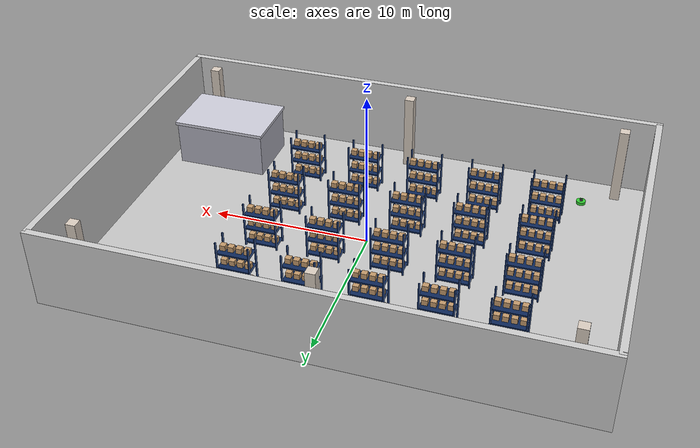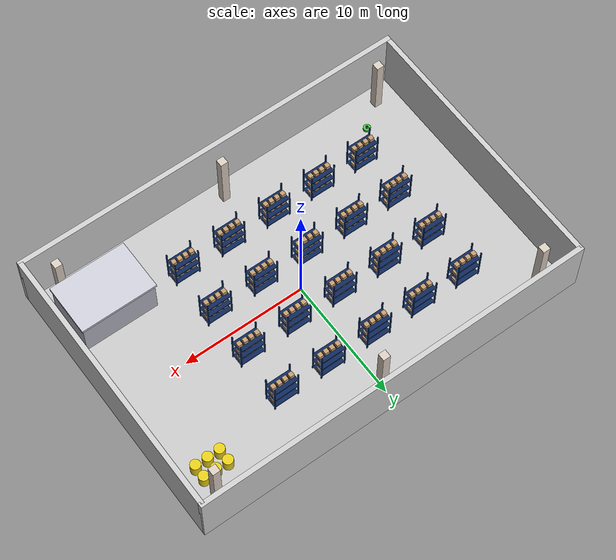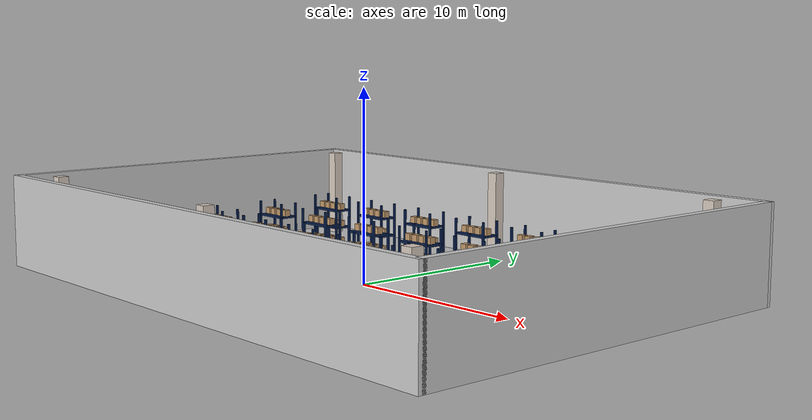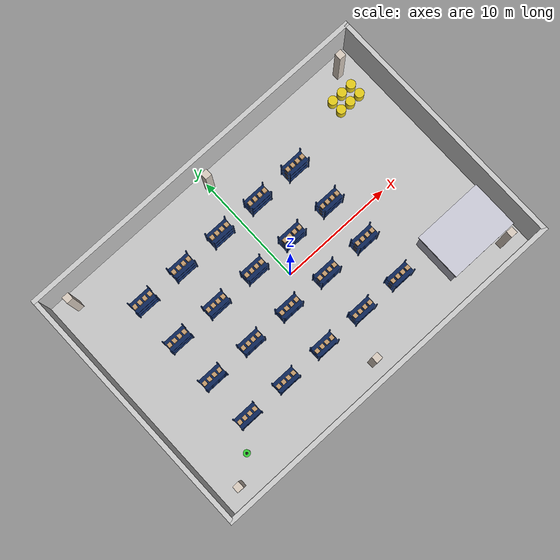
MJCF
<mujoco model="warehouse">
  <option gravity="0 0 -9.81" timestep="0.005"/>
  <compiler angle="degree"/>

  <asset>
    <texture type="skybox" builtin="gradient" rgb1="0.4 0.6 0.8" rgb2="0 0 0" width="512" height="512"/>
    <texture name="grid" type="2d" builtin="checker" width="512" height="512" rgb1="0.8 0.8 0.8" rgb2="0.75 0.75 0.75"/>
    <material name="floor_mat" texture="grid" texrepeat="20 20" texuniform="true" reflectance="0.05"/>

    <material name="mat_blue_rack" rgba="0.05 0.15 0.35 1" reflectance="0.2"/>
    <material name="mat_box_brown" rgba="0.76 0.6 0.42 1" reflectance="0.0"/>
    <material name="mat_pillar" rgba="0.85 0.8 0.75 1" reflectance="0.0"/>
    <material name="mat_wall" rgba="0.8 0.8 0.8 1" reflectance="0.0"/>
    <material name="mat_barrel" rgba="0.9 0.8 0.1 1" reflectance="0.3"/>
    <material name="mat_office" rgba="0.7 0.7 0.75 1" reflectance="0.1"/>
    <material name="mat_office_roof" rgba="0.8 0.8 0.85 1" reflectance="0.1"/>
  </asset>

  <worldbody>
    <!-- Lighting -->
    <light pos="0 0 15" dir="0 0 -1" directional="true" diffuse="0.9 0.9 0.9" specular="0.1 0.1 0.1" castshadow="true"/>
    <light pos="-10 0 10" dir="1 0 -1" directional="false" diffuse="0.4 0.4 0.4"/>
    <light pos="10 0 10" dir="-1 0 -1" directional="false" diffuse="0.4 0.4 0.4"/>

    <!-- Floor -->
    <geom type="plane" size="16 11 0.05" material="floor_mat"/>

    <!-- Perimeter Walls -->
    <body name="wall_left" pos="-16 0 2.5">
      <geom type="box" size="0.2 11 2.5" material="mat_wall"/>
    </body>
    <body name="wall_right" pos="16 0 2.5">
      <geom type="box" size="0.2 11 2.5" material="mat_wall"/>
    </body>
    <body name="wall_top" pos="0 11 2.5">
      <geom type="box" size="16.2 0.2 2.5" material="mat_wall"/>
    </body>
    <body name="wall_bottom" pos="0 -11 2.5">
      <geom type="box" size="16.2 0.2 2.5" material="mat_wall"/>
    </body>

    <body name="pillar_1" pos="-14 -9.5 2.5">
      <geom type="box" size="0.3 0.3 2.5" material="mat_pillar"/>
    </body>
    <body name="pillar_2" pos="-14 9.5 2.5">
      <geom type="box" size="0.3 0.3 2.5" material="mat_pillar"/>
    </body>
    <body name="pillar_3" pos="0 -9.5 2.5">
      <geom type="box" size="0.3 0.3 2.5" material="mat_pillar"/>
    </body>
    <body name="pillar_4" pos="0 9.5 2.5">
      <geom type="box" size="0.3 0.3 2.5" material="mat_pillar"/>
    </body>
    <body name="pillar_5" pos="14 -9.5 2.5">
      <geom type="box" size="0.3 0.3 2.5" material="mat_pillar"/>
    </body>
    <body name="pillar_6" pos="14 9.5 2.5">
      <geom type="box" size="0.3 0.3 2.5" material="mat_pillar"/>
    </body>

    <!-- Office Block -->
    <body name="office_container" pos="12 -7 1.5">
      <geom type="box" size="3 2 1.5" material="mat_office"/>
      <geom type="box" size="3.1 2.1 0.1" pos="0 0 1.5" material="mat_office_roof"/>
    </body>

    <body name="barrel_1" pos="12 7 0.5">
      <geom type="cylinder" size="0.4 0.5" material="mat_barrel"/>
    </body>
    <body name="barrel_2" pos="12 8 0.5">
      <geom type="cylinder" size="0.4 0.5" material="mat_barrel"/>
    </body>
    <body name="barrel_3" pos="13 7 0.5">
      <geom type="cylinder" size="0.4 0.5" material="mat_barrel"/>
    </body>
    <body name="barrel_4" pos="13 8 0.5">
      <geom type="cylinder" size="0.4 0.5" material="mat_barrel"/>
    </body>
    <body name="barrel_5" pos="14 7 0.5">
      <geom type="cylinder" size="0.4 0.5" material="mat_barrel"/>
    </body>
    <body name="barrel_6" pos="14 8 0.5">
      <geom type="cylinder" size="0.4 0.5" material="mat_barrel"/>
    </body>

    <!-- Rack 1 -->
    <body name="rack_1" pos="-10 -6 0">
      <geom type="box" size="0.05 0.05 1.5" pos="-1.0 -0.5 1.5" material="mat_blue_rack"/>
<geom type="box" size="0.05 0.05 1.5" pos="-1.0 0.5 1.5" material="mat_blue_rack"/>
<geom type="box" size="0.05 0.05 1.5" pos="1.0 -0.5 1.5" material="mat_blue_rack"/>
<geom type="box" size="0.05 0.05 1.5" pos="1.0 0.5 1.5" material="mat_blue_rack"/>

      <geom type="box" size="1.0 0.5 0.05" pos="0 0 0.2" material="mat_blue_rack"/>
<geom type="box" size="0.175 0.175 0.175" pos="-0.75 0 0.425" material="mat_box_brown"/>
<geom type="box" size="0.175 0.175 0.175" pos="-0.25 0 0.425" material="mat_box_brown"/>
<geom type="box" size="0.175 0.175 0.175" pos="0.25 0 0.425" material="mat_box_brown"/>
<geom type="box" size="0.175 0.175 0.175" pos="0.75 0 0.425" material="mat_box_brown"/>
<geom type="box" size="1.0 0.5 0.05" pos="0 0 1.2" material="mat_blue_rack"/>
<geom type="box" size="0.175 0.175 0.175" pos="-0.75 0 1.425" material="mat_box_brown"/>
<geom type="box" size="0.175 0.175 0.175" pos="-0.25 0 1.425" material="mat_box_brown"/>
<geom type="box" size="0.175 0.175 0.175" pos="0.25 0 1.425" material="mat_box_brown"/>
<geom type="box" size="0.175 0.175 0.175" pos="0.75 0 1.425" material="mat_box_brown"/>
<geom type="box" size="1.0 0.5 0.05" pos="0 0 2.2" material="mat_blue_rack"/>
<geom type="box" size="0.175 0.175 0.175" pos="-0.75 0 2.425" material="mat_box_brown"/>
<geom type="box" size="0.175 0.175 0.175" pos="-0.25 0 2.425" material="mat_box_brown"/>
<geom type="box" size="0.175 0.175 0.175" pos="0.25 0 2.425" material="mat_box_brown"/>
<geom type="box" size="0.175 0.175 0.175" pos="0.75 0 2.425" material="mat_box_brown"/>

    </body>
    <!-- Rack 2 -->
    <body name="rack_2" pos="-6 -6 0">
      <geom type="box" size="0.05 0.05 1.5" pos="-1.0 -0.5 1.5" material="mat_blue_rack"/>
<geom type="box" size="0.05 0.05 1.5" pos="-1.0 0.5 1.5" material="mat_blue_rack"/>
<geom type="box" size="0.05 0.05 1.5" pos="1.0 -0.5 1.5" material="mat_blue_rack"/>
<geom type="box" size="0.05 0.05 1.5" pos="1.0 0.5 1.5" material="mat_blue_rack"/>

      <geom type="box" size="1.0 0.5 0.05" pos="0 0 0.2" material="mat_blue_rack"/>
<geom type="box" size="0.175 0.175 0.175" pos="-0.75 0 0.425" material="mat_box_brown"/>
<geom type="box" size="0.175 0.175 0.175" pos="-0.25 0 0.425" material="mat_box_brown"/>
<geom type="box" size="0.175 0.175 0.175" pos="0.25 0 0.425" material="mat_box_brown"/>
<geom type="box" size="0.175 0.175 0.175" pos="0.75 0 0.425" material="mat_box_brown"/>
<geom type="box" size="1.0 0.5 0.05" pos="0 0 1.2" material="mat_blue_rack"/>
<geom type="box" size="0.175 0.175 0.175" pos="-0.75 0 1.425" material="mat_box_brown"/>
<geom type="box" size="0.175 0.175 0.175" pos="-0.25 0 1.425" material="mat_box_brown"/>
<geom type="box" size="0.175 0.175 0.175" pos="0.25 0 1.425" material="mat_box_brown"/>
<geom type="box" size="0.175 0.175 0.175" pos="0.75 0 1.425" material="mat_box_brown"/>
<geom type="box" size="1.0 0.5 0.05" pos="0 0 2.2" material="mat_blue_rack"/>
<geom type="box" size="0.175 0.175 0.175" pos="-0.75 0 2.425" material="mat_box_brown"/>
<geom type="box" size="0.175 0.175 0.175" pos="-0.25 0 2.425" material="mat_box_brown"/>
<geom type="box" size="0.175 0.175 0.175" pos="0.25 0 2.425" material="mat_box_brown"/>
<geom type="box" size="0.175 0.175 0.175" pos="0.75 0 2.425" material="mat_box_brown"/>

    </body>
    <!-- Rack 3 -->
    <body name="rack_3" pos="-2 -6 0">
      <geom type="box" size="0.05 0.05 1.5" pos="-1.0 -0.5 1.5" material="mat_blue_rack"/>
<geom type="box" size="0.05 0.05 1.5" pos="-1.0 0.5 1.5" material="mat_blue_rack"/>
<geom type="box" size="0.05 0.05 1.5" pos="1.0 -0.5 1.5" material="mat_blue_rack"/>
<geom type="box" size="0.05 0.05 1.5" pos="1.0 0.5 1.5" material="mat_blue_rack"/>

      <geom type="box" size="1.0 0.5 0.05" pos="0 0 0.2" material="mat_blue_rack"/>
<geom type="box" size="0.175 0.175 0.175" pos="-0.75 0 0.425" material="mat_box_brown"/>
<geom type="box" size="0.175 0.175 0.175" pos="-0.25 0 0.425" material="mat_box_brown"/>
<geom type="box" size="0.175 0.175 0.175" pos="0.25 0 0.425" material="mat_box_brown"/>
<geom type="box" size="0.175 0.175 0.175" pos="0.75 0 0.425" material="mat_box_brown"/>
<geom type="box" size="1.0 0.5 0.05" pos="0 0 1.2" material="mat_blue_rack"/>
<geom type="box" size="0.175 0.175 0.175" pos="-0.75 0 1.425" material="mat_box_brown"/>
<geom type="box" size="0.175 0.175 0.175" pos="-0.25 0 1.425" material="mat_box_brown"/>
<geom type="box" size="0.175 0.175 0.175" pos="0.25 0 1.425" material="mat_box_brown"/>
<geom type="box" size="0.175 0.175 0.175" pos="0.75 0 1.425" material="mat_box_brown"/>
<geom type="box" size="1.0 0.5 0.05" pos="0 0 2.2" material="mat_blue_rack"/>
<geom type="box" size="0.175 0.175 0.175" pos="-0.75 0 2.425" material="mat_box_brown"/>
<geom type="box" size="0.175 0.175 0.175" pos="-0.25 0 2.425" material="mat_box_brown"/>
<geom type="box" size="0.175 0.175 0.175" pos="0.25 0 2.425" material="mat_box_brown"/>
<geom type="box" size="0.175 0.175 0.175" pos="0.75 0 2.425" material="mat_box_brown"/>

    </body>
    <!-- Rack 4 -->
    <body name="rack_4" pos="2 -6 0">
      <geom type="box" size="0.05 0.05 1.5" pos="-1.0 -0.5 1.5" material="mat_blue_rack"/>
<geom type="box" size="0.05 0.05 1.5" pos="-1.0 0.5 1.5" material="mat_blue_rack"/>
<geom type="box" size="0.05 0.05 1.5" pos="1.0 -0.5 1.5" material="mat_blue_rack"/>
<geom type="box" size="0.05 0.05 1.5" pos="1.0 0.5 1.5" material="mat_blue_rack"/>

      <geom type="box" size="1.0 0.5 0.05" pos="0 0 0.2" material="mat_blue_rack"/>
<geom type="box" size="0.175 0.175 0.175" pos="-0.75 0 0.425" material="mat_box_brown"/>
<geom type="box" size="0.175 0.175 0.175" pos="-0.25 0 0.425" material="mat_box_brown"/>
<geom type="box" size="0.175 0.175 0.175" pos="0.25 0 0.425" material="mat_box_brown"/>
<geom type="box" size="0.175 0.175 0.175" pos="0.75 0 0.425" material="mat_box_brown"/>
<geom type="box" size="1.0 0.5 0.05" pos="0 0 1.2" material="mat_blue_rack"/>
<geom type="box" size="0.175 0.175 0.175" pos="-0.75 0 1.425" material="mat_box_brown"/>
<geom type="box" size="0.175 0.175 0.175" pos="-0.25 0 1.425" material="mat_box_brown"/>
<geom type="box" size="0.175 0.175 0.175" pos="0.25 0 1.425" material="mat_box_brown"/>
<geom type="box" size="0.175 0.175 0.175" pos="0.75 0 1.425" material="mat_box_brown"/>
<geom type="box" size="1.0 0.5 0.05" pos="0 0 2.2" material="mat_blue_rack"/>
<geom type="box" size="0.175 0.175 0.175" pos="-0.75 0 2.425" material="mat_box_brown"/>
<geom type="box" size="0.175 0.175 0.175" pos="-0.25 0 2.425" material="mat_box_brown"/>
<geom type="box" size="0.175 0.175 0.175" pos="0.25 0 2.425" material="mat_box_brown"/>
<geom type="box" size="0.175 0.175 0.175" pos="0.75 0 2.425" material="mat_box_brown"/>

    </body>
    <!-- Rack 5 -->
    <body name="rack_5" pos="6 -6 0">
      <geom type="box" size="0.05 0.05 1.5" pos="-1.0 -0.5 1.5" material="mat_blue_rack"/>
<geom type="box" size="0.05 0.05 1.5" pos="-1.0 0.5 1.5" material="mat_blue_rack"/>
<geom type="box" size="0.05 0.05 1.5" pos="1.0 -0.5 1.5" material="mat_blue_rack"/>
<geom type="box" size="0.05 0.05 1.5" pos="1.0 0.5 1.5" material="mat_blue_rack"/>

      <geom type="box" size="1.0 0.5 0.05" pos="0 0 0.2" material="mat_blue_rack"/>
<geom type="box" size="0.175 0.175 0.175" pos="-0.75 0 0.425" material="mat_box_brown"/>
<geom type="box" size="0.175 0.175 0.175" pos="-0.25 0 0.425" material="mat_box_brown"/>
<geom type="box" size="0.175 0.175 0.175" pos="0.25 0 0.425" material="mat_box_brown"/>
<geom type="box" size="0.175 0.175 0.175" pos="0.75 0 0.425" material="mat_box_brown"/>
<geom type="box" size="1.0 0.5 0.05" pos="0 0 1.2" material="mat_blue_rack"/>
<geom type="box" size="0.175 0.175 0.175" pos="-0.75 0 1.425" material="mat_box_brown"/>
<geom type="box" size="0.175 0.175 0.175" pos="-0.25 0 1.425" material="mat_box_brown"/>
<geom type="box" size="0.175 0.175 0.175" pos="0.25 0 1.425" material="mat_box_brown"/>
<geom type="box" size="0.175 0.175 0.175" pos="0.75 0 1.425" material="mat_box_brown"/>
<geom type="box" size="1.0 0.5 0.05" pos="0 0 2.2" material="mat_blue_rack"/>
<geom type="box" size="0.175 0.175 0.175" pos="-0.75 0 2.425" material="mat_box_brown"/>
<geom type="box" size="0.175 0.175 0.175" pos="-0.25 0 2.425" material="mat_box_brown"/>
<geom type="box" size="0.175 0.175 0.175" pos="0.25 0 2.425" material="mat_box_brown"/>
<geom type="box" size="0.175 0.175 0.175" pos="0.75 0 2.425" material="mat_box_brown"/>

    </body>
    <!-- Rack 6 -->
    <body name="rack_6" pos="-10 -2 0">
      <geom type="box" size="0.05 0.05 1.5" pos="-1.0 -0.5 1.5" material="mat_blue_rack"/>
<geom type="box" size="0.05 0.05 1.5" pos="-1.0 0.5 1.5" material="mat_blue_rack"/>
<geom type="box" size="0.05 0.05 1.5" pos="1.0 -0.5 1.5" material="mat_blue_rack"/>
<geom type="box" size="0.05 0.05 1.5" pos="1.0 0.5 1.5" material="mat_blue_rack"/>

      <geom type="box" size="1.0 0.5 0.05" pos="0 0 0.2" material="mat_blue_rack"/>
<geom type="box" size="0.175 0.175 0.175" pos="-0.75 0 0.425" material="mat_box_brown"/>
<geom type="box" size="0.175 0.175 0.175" pos="-0.25 0 0.425" material="mat_box_brown"/>
<geom type="box" size="0.175 0.175 0.175" pos="0.25 0 0.425" material="mat_box_brown"/>
<geom type="box" size="0.175 0.175 0.175" pos="0.75 0 0.425" material="mat_box_brown"/>
<geom type="box" size="1.0 0.5 0.05" pos="0 0 1.2" material="mat_blue_rack"/>
<geom type="box" size="0.175 0.175 0.175" pos="-0.75 0 1.425" material="mat_box_brown"/>
<geom type="box" size="0.175 0.175 0.175" pos="-0.25 0 1.425" material="mat_box_brown"/>
<geom type="box" size="0.175 0.175 0.175" pos="0.25 0 1.425" material="mat_box_brown"/>
<geom type="box" size="0.175 0.175 0.175" pos="0.75 0 1.425" material="mat_box_brown"/>
<geom type="box" size="1.0 0.5 0.05" pos="0 0 2.2" material="mat_blue_rack"/>
<geom type="box" size="0.175 0.175 0.175" pos="-0.75 0 2.425" material="mat_box_brown"/>
<geom type="box" size="0.175 0.175 0.175" pos="-0.25 0 2.425" material="mat_box_brown"/>
<geom type="box" size="0.175 0.175 0.175" pos="0.25 0 2.425" material="mat_box_brown"/>
<geom type="box" size="0.175 0.175 0.175" pos="0.75 0 2.425" material="mat_box_brown"/>

    </body>
    <!-- Rack 7 -->
    <body name="rack_7" pos="-6 -2 0">
      <geom type="box" size="0.05 0.05 1.5" pos="-1.0 -0.5 1.5" material="mat_blue_rack"/>
<geom type="box" size="0.05 0.05 1.5" pos="-1.0 0.5 1.5" material="mat_blue_rack"/>
<geom type="box" size="0.05 0.05 1.5" pos="1.0 -0.5 1.5" material="mat_blue_rack"/>
<geom type="box" size="0.05 0.05 1.5" pos="1.0 0.5 1.5" material="mat_blue_rack"/>

      <geom type="box" size="1.0 0.5 0.05" pos="0 0 0.2" material="mat_blue_rack"/>
<geom type="box" size="0.175 0.175 0.175" pos="-0.75 0 0.425" material="mat_box_brown"/>
<geom type="box" size="0.175 0.175 0.175" pos="-0.25 0 0.425" material="mat_box_brown"/>
<geom type="box" size="0.175 0.175 0.175" pos="0.25 0 0.425" material="mat_box_brown"/>
<geom type="box" size="0.175 0.175 0.175" pos="0.75 0 0.425" material="mat_box_brown"/>
<geom type="box" size="1.0 0.5 0.05" pos="0 0 1.2" material="mat_blue_rack"/>
<geom type="box" size="0.175 0.175 0.175" pos="-0.75 0 1.425" material="mat_box_brown"/>
<geom type="box" size="0.175 0.175 0.175" pos="-0.25 0 1.425" material="mat_box_brown"/>
<geom type="box" size="0.175 0.175 0.175" pos="0.25 0 1.425" material="mat_box_brown"/>
<geom type="box" size="0.175 0.175 0.175" pos="0.75 0 1.425" material="mat_box_brown"/>
<geom type="box" size="1.0 0.5 0.05" pos="0 0 2.2" material="mat_blue_rack"/>
<geom type="box" size="0.175 0.175 0.175" pos="-0.75 0 2.425" material="mat_box_brown"/>
<geom type="box" size="0.175 0.175 0.175" pos="-0.25 0 2.425" material="mat_box_brown"/>
<geom type="box" size="0.175 0.175 0.175" pos="0.25 0 2.425" material="mat_box_brown"/>
<geom type="box" size="0.175 0.175 0.175" pos="0.75 0 2.425" material="mat_box_brown"/>

    </body>
    <!-- Rack 8 -->
    <body name="rack_8" pos="-2 -2 0">
      <geom type="box" size="0.05 0.05 1.5" pos="-1.0 -0.5 1.5" material="mat_blue_rack"/>
<geom type="box" size="0.05 0.05 1.5" pos="-1.0 0.5 1.5" material="mat_blue_rack"/>
<geom type="box" size="0.05 0.05 1.5" pos="1.0 -0.5 1.5" material="mat_blue_rack"/>
<geom type="box" size="0.05 0.05 1.5" pos="1.0 0.5 1.5" material="mat_blue_rack"/>

      <geom type="box" size="1.0 0.5 0.05" pos="0 0 0.2" material="mat_blue_rack"/>
<geom type="box" size="0.175 0.175 0.175" pos="-0.75 0 0.425" material="mat_box_brown"/>
<geom type="box" size="0.175 0.175 0.175" pos="-0.25 0 0.425" material="mat_box_brown"/>
<geom type="box" size="0.175 0.175 0.175" pos="0.25 0 0.425" material="mat_box_brown"/>
<geom type="box" size="0.175 0.175 0.175" pos="0.75 0 0.425" material="mat_box_brown"/>
<geom type="box" size="1.0 0.5 0.05" pos="0 0 1.2" material="mat_blue_rack"/>
<geom type="box" size="0.175 0.175 0.175" pos="-0.75 0 1.425" material="mat_box_brown"/>
<geom type="box" size="0.175 0.175 0.175" pos="-0.25 0 1.425" material="mat_box_brown"/>
<geom type="box" size="0.175 0.175 0.175" pos="0.25 0 1.425" material="mat_box_brown"/>
<geom type="box" size="0.175 0.175 0.175" pos="0.75 0 1.425" material="mat_box_brown"/>
<geom type="box" size="1.0 0.5 0.05" pos="0 0 2.2" material="mat_blue_rack"/>
<geom type="box" size="0.175 0.175 0.175" pos="-0.75 0 2.425" material="mat_box_brown"/>
<geom type="box" size="0.175 0.175 0.175" pos="-0.25 0 2.425" material="mat_box_brown"/>
<geom type="box" size="0.175 0.175 0.175" pos="0.25 0 2.425" material="mat_box_brown"/>
<geom type="box" size="0.175 0.175 0.175" pos="0.75 0 2.425" material="mat_box_brown"/>

    </body>
    <!-- Rack 9 -->
    <body name="rack_9" pos="2 -2 0">
      <geom type="box" size="0.05 0.05 1.5" pos="-1.0 -0.5 1.5" material="mat_blue_rack"/>
<geom type="box" size="0.05 0.05 1.5" pos="-1.0 0.5 1.5" material="mat_blue_rack"/>
<geom type="box" size="0.05 0.05 1.5" pos="1.0 -0.5 1.5" material="mat_blue_rack"/>
<geom type="box" size="0.05 0.05 1.5" pos="1.0 0.5 1.5" material="mat_blue_rack"/>

      <geom type="box" size="1.0 0.5 0.05" pos="0 0 0.2" material="mat_blue_rack"/>
<geom type="box" size="0.175 0.175 0.175" pos="-0.75 0 0.425" material="mat_box_brown"/>
<geom type="box" size="0.175 0.175 0.175" pos="-0.25 0 0.425" material="mat_box_brown"/>
<geom type="box" size="0.175 0.175 0.175" pos="0.25 0 0.425" material="mat_box_brown"/>
<geom type="box" size="0.175 0.175 0.175" pos="0.75 0 0.425" material="mat_box_brown"/>
<geom type="box" size="1.0 0.5 0.05" pos="0 0 1.2" material="mat_blue_rack"/>
<geom type="box" size="0.175 0.175 0.175" pos="-0.75 0 1.425" material="mat_box_brown"/>
<geom type="box" size="0.175 0.175 0.175" pos="-0.25 0 1.425" material="mat_box_brown"/>
<geom type="box" size="0.175 0.175 0.175" pos="0.25 0 1.425" material="mat_box_brown"/>
<geom type="box" size="0.175 0.175 0.175" pos="0.75 0 1.425" material="mat_box_brown"/>
<geom type="box" size="1.0 0.5 0.05" pos="0 0 2.2" material="mat_blue_rack"/>
<geom type="box" size="0.175 0.175 0.175" pos="-0.75 0 2.425" material="mat_box_brown"/>
<geom type="box" size="0.175 0.175 0.175" pos="-0.25 0 2.425" material="mat_box_brown"/>
<geom type="box" size="0.175 0.175 0.175" pos="0.25 0 2.425" material="mat_box_brown"/>
<geom type="box" size="0.175 0.175 0.175" pos="0.75 0 2.425" material="mat_box_brown"/>

    </body>
    <!-- Rack 10 -->
    <body name="rack_10" pos="6 -2 0">
      <geom type="box" size="0.05 0.05 1.5" pos="-1.0 -0.5 1.5" material="mat_blue_rack"/>
<geom type="box" size="0.05 0.05 1.5" pos="-1.0 0.5 1.5" material="mat_blue_rack"/>
<geom type="box" size="0.05 0.05 1.5" pos="1.0 -0.5 1.5" material="mat_blue_rack"/>
<geom type="box" size="0.05 0.05 1.5" pos="1.0 0.5 1.5" material="mat_blue_rack"/>

      <geom type="box" size="1.0 0.5 0.05" pos="0 0 0.2" material="mat_blue_rack"/>
<geom type="box" size="0.175 0.175 0.175" pos="-0.75 0 0.425" material="mat_box_brown"/>
<geom type="box" size="0.175 0.175 0.175" pos="-0.25 0 0.425" material="mat_box_brown"/>
<geom type="box" size="0.175 0.175 0.175" pos="0.25 0 0.425" material="mat_box_brown"/>
<geom type="box" size="0.175 0.175 0.175" pos="0.75 0 0.425" material="mat_box_brown"/>
<geom type="box" size="1.0 0.5 0.05" pos="0 0 1.2" material="mat_blue_rack"/>
<geom type="box" size="0.175 0.175 0.175" pos="-0.75 0 1.425" material="mat_box_brown"/>
<geom type="box" size="0.175 0.175 0.175" pos="-0.25 0 1.425" material="mat_box_brown"/>
<geom type="box" size="0.175 0.175 0.175" pos="0.25 0 1.425" material="mat_box_brown"/>
<geom type="box" size="0.175 0.175 0.175" pos="0.75 0 1.425" material="mat_box_brown"/>
<geom type="box" size="1.0 0.5 0.05" pos="0 0 2.2" material="mat_blue_rack"/>
<geom type="box" size="0.175 0.175 0.175" pos="-0.75 0 2.425" material="mat_box_brown"/>
<geom type="box" size="0.175 0.175 0.175" pos="-0.25 0 2.425" material="mat_box_brown"/>
<geom type="box" size="0.175 0.175 0.175" pos="0.25 0 2.425" material="mat_box_brown"/>
<geom type="box" size="0.175 0.175 0.175" pos="0.75 0 2.425" material="mat_box_brown"/>

    </body>
    <!-- Rack 11 -->
    <body name="rack_11" pos="-10 2 0">
      <geom type="box" size="0.05 0.05 1.5" pos="-1.0 -0.5 1.5" material="mat_blue_rack"/>
<geom type="box" size="0.05 0.05 1.5" pos="-1.0 0.5 1.5" material="mat_blue_rack"/>
<geom type="box" size="0.05 0.05 1.5" pos="1.0 -0.5 1.5" material="mat_blue_rack"/>
<geom type="box" size="0.05 0.05 1.5" pos="1.0 0.5 1.5" material="mat_blue_rack"/>

      <geom type="box" size="1.0 0.5 0.05" pos="0 0 0.2" material="mat_blue_rack"/>
<geom type="box" size="0.175 0.175 0.175" pos="-0.75 0 0.425" material="mat_box_brown"/>
<geom type="box" size="0.175 0.175 0.175" pos="-0.25 0 0.425" material="mat_box_brown"/>
<geom type="box" size="0.175 0.175 0.175" pos="0.25 0 0.425" material="mat_box_brown"/>
<geom type="box" size="0.175 0.175 0.175" pos="0.75 0 0.425" material="mat_box_brown"/>
<geom type="box" size="1.0 0.5 0.05" pos="0 0 1.2" material="mat_blue_rack"/>
<geom type="box" size="0.175 0.175 0.175" pos="-0.75 0 1.425" material="mat_box_brown"/>
<geom type="box" size="0.175 0.175 0.175" pos="-0.25 0 1.425" material="mat_box_brown"/>
<geom type="box" size="0.175 0.175 0.175" pos="0.25 0 1.425" material="mat_box_brown"/>
<geom type="box" size="0.175 0.175 0.175" pos="0.75 0 1.425" material="mat_box_brown"/>
<geom type="box" size="1.0 0.5 0.05" pos="0 0 2.2" material="mat_blue_rack"/>
<geom type="box" size="0.175 0.175 0.175" pos="-0.75 0 2.425" material="mat_box_brown"/>
<geom type="box" size="0.175 0.175 0.175" pos="-0.25 0 2.425" material="mat_box_brown"/>
<geom type="box" size="0.175 0.175 0.175" pos="0.25 0 2.425" material="mat_box_brown"/>
<geom type="box" size="0.175 0.175 0.175" pos="0.75 0 2.425" material="mat_box_brown"/>

    </body>
    <!-- Rack 12 -->
    <body name="rack_12" pos="-6 2 0">
      <geom type="box" size="0.05 0.05 1.5" pos="-1.0 -0.5 1.5" material="mat_blue_rack"/>
<geom type="box" size="0.05 0.05 1.5" pos="-1.0 0.5 1.5" material="mat_blue_rack"/>
<geom type="box" size="0.05 0.05 1.5" pos="1.0 -0.5 1.5" material="mat_blue_rack"/>
<geom type="box" size="0.05 0.05 1.5" pos="1.0 0.5 1.5" material="mat_blue_rack"/>

      <geom type="box" size="1.0 0.5 0.05" pos="0 0 0.2" material="mat_blue_rack"/>
<geom type="box" size="0.175 0.175 0.175" pos="-0.75 0 0.425" material="mat_box_brown"/>
<geom type="box" size="0.175 0.175 0.175" pos="-0.25 0 0.425" material="mat_box_brown"/>
<geom type="box" size="0.175 0.175 0.175" pos="0.25 0 0.425" material="mat_box_brown"/>
<geom type="box" size="0.175 0.175 0.175" pos="0.75 0 0.425" material="mat_box_brown"/>
<geom type="box" size="1.0 0.5 0.05" pos="0 0 1.2" material="mat_blue_rack"/>
<geom type="box" size="0.175 0.175 0.175" pos="-0.75 0 1.425" material="mat_box_brown"/>
<geom type="box" size="0.175 0.175 0.175" pos="-0.25 0 1.425" material="mat_box_brown"/>
<geom type="box" size="0.175 0.175 0.175" pos="0.25 0 1.425" material="mat_box_brown"/>
<geom type="box" size="0.175 0.175 0.175" pos="0.75 0 1.425" material="mat_box_brown"/>
<geom type="box" size="1.0 0.5 0.05" pos="0 0 2.2" material="mat_blue_rack"/>
<geom type="box" size="0.175 0.175 0.175" pos="-0.75 0 2.425" material="mat_box_brown"/>
<geom type="box" size="0.175 0.175 0.175" pos="-0.25 0 2.425" material="mat_box_brown"/>
<geom type="box" size="0.175 0.175 0.175" pos="0.25 0 2.425" material="mat_box_brown"/>
<geom type="box" size="0.175 0.175 0.175" pos="0.75 0 2.425" material="mat_box_brown"/>

    </body>
    <!-- Rack 13 -->
    <body name="rack_13" pos="-2 2 0">
      <geom type="box" size="0.05 0.05 1.5" pos="-1.0 -0.5 1.5" material="mat_blue_rack"/>
<geom type="box" size="0.05 0.05 1.5" pos="-1.0 0.5 1.5" material="mat_blue_rack"/>
<geom type="box" size="0.05 0.05 1.5" pos="1.0 -0.5 1.5" material="mat_blue_rack"/>
<geom type="box" size="0.05 0.05 1.5" pos="1.0 0.5 1.5" material="mat_blue_rack"/>

      <geom type="box" size="1.0 0.5 0.05" pos="0 0 0.2" material="mat_blue_rack"/>
<geom type="box" size="0.175 0.175 0.175" pos="-0.75 0 0.425" material="mat_box_brown"/>
<geom type="box" size="0.175 0.175 0.175" pos="-0.25 0 0.425" material="mat_box_brown"/>
<geom type="box" size="0.175 0.175 0.175" pos="0.25 0 0.425" material="mat_box_brown"/>
<geom type="box" size="0.175 0.175 0.175" pos="0.75 0 0.425" material="mat_box_brown"/>
<geom type="box" size="1.0 0.5 0.05" pos="0 0 1.2" material="mat_blue_rack"/>
<geom type="box" size="0.175 0.175 0.175" pos="-0.75 0 1.425" material="mat_box_brown"/>
<geom type="box" size="0.175 0.175 0.175" pos="-0.25 0 1.425" material="mat_box_brown"/>
<geom type="box" size="0.175 0.175 0.175" pos="0.25 0 1.425" material="mat_box_brown"/>
<geom type="box" size="0.175 0.175 0.175" pos="0.75 0 1.425" material="mat_box_brown"/>
<geom type="box" size="1.0 0.5 0.05" pos="0 0 2.2" material="mat_blue_rack"/>
<geom type="box" size="0.175 0.175 0.175" pos="-0.75 0 2.425" material="mat_box_brown"/>
<geom type="box" size="0.175 0.175 0.175" pos="-0.25 0 2.425" material="mat_box_brown"/>
<geom type="box" size="0.175 0.175 0.175" pos="0.25 0 2.425" material="mat_box_brown"/>
<geom type="box" size="0.175 0.175 0.175" pos="0.75 0 2.425" material="mat_box_brown"/>

    </body>
    <!-- Rack 14 -->
    <body name="rack_14" pos="2 2 0">
      <geom type="box" size="0.05 0.05 1.5" pos="-1.0 -0.5 1.5" material="mat_blue_rack"/>
<geom type="box" size="0.05 0.05 1.5" pos="-1.0 0.5 1.5" material="mat_blue_rack"/>
<geom type="box" size="0.05 0.05 1.5" pos="1.0 -0.5 1.5" material="mat_blue_rack"/>
<geom type="box" size="0.05 0.05 1.5" pos="1.0 0.5 1.5" material="mat_blue_rack"/>

      <geom type="box" size="1.0 0.5 0.05" pos="0 0 0.2" material="mat_blue_rack"/>
<geom type="box" size="0.175 0.175 0.175" pos="-0.75 0 0.425" material="mat_box_brown"/>
<geom type="box" size="0.175 0.175 0.175" pos="-0.25 0 0.425" material="mat_box_brown"/>
<geom type="box" size="0.175 0.175 0.175" pos="0.25 0 0.425" material="mat_box_brown"/>
<geom type="box" size="0.175 0.175 0.175" pos="0.75 0 0.425" material="mat_box_brown"/>
<geom type="box" size="1.0 0.5 0.05" pos="0 0 1.2" material="mat_blue_rack"/>
<geom type="box" size="0.175 0.175 0.175" pos="-0.75 0 1.425" material="mat_box_brown"/>
<geom type="box" size="0.175 0.175 0.175" pos="-0.25 0 1.425" material="mat_box_brown"/>
<geom type="box" size="0.175 0.175 0.175" pos="0.25 0 1.425" material="mat_box_brown"/>
<geom type="box" size="0.175 0.175 0.175" pos="0.75 0 1.425" material="mat_box_brown"/>
<geom type="box" size="1.0 0.5 0.05" pos="0 0 2.2" material="mat_blue_rack"/>
<geom type="box" size="0.175 0.175 0.175" pos="-0.75 0 2.425" material="mat_box_brown"/>
<geom type="box" size="0.175 0.175 0.175" pos="-0.25 0 2.425" material="mat_box_brown"/>
<geom type="box" size="0.175 0.175 0.175" pos="0.25 0 2.425" material="mat_box_brown"/>
<geom type="box" size="0.175 0.175 0.175" pos="0.75 0 2.425" material="mat_box_brown"/>

    </body>
    <!-- Rack 15 -->
    <body name="rack_15" pos="6 2 0">
      <geom type="box" size="0.05 0.05 1.5" pos="-1.0 -0.5 1.5" material="mat_blue_rack"/>
<geom type="box" size="0.05 0.05 1.5" pos="-1.0 0.5 1.5" material="mat_blue_rack"/>
<geom type="box" size="0.05 0.05 1.5" pos="1.0 -0.5 1.5" material="mat_blue_rack"/>
<geom type="box" size="0.05 0.05 1.5" pos="1.0 0.5 1.5" material="mat_blue_rack"/>

      <geom type="box" size="1.0 0.5 0.05" pos="0 0 0.2" material="mat_blue_rack"/>
<geom type="box" size="0.175 0.175 0.175" pos="-0.75 0 0.425" material="mat_box_brown"/>
<geom type="box" size="0.175 0.175 0.175" pos="-0.25 0 0.425" material="mat_box_brown"/>
<geom type="box" size="0.175 0.175 0.175" pos="0.25 0 0.425" material="mat_box_brown"/>
<geom type="box" size="0.175 0.175 0.175" pos="0.75 0 0.425" material="mat_box_brown"/>
<geom type="box" size="1.0 0.5 0.05" pos="0 0 1.2" material="mat_blue_rack"/>
<geom type="box" size="0.175 0.175 0.175" pos="-0.75 0 1.425" material="mat_box_brown"/>
<geom type="box" size="0.175 0.175 0.175" pos="-0.25 0 1.425" material="mat_box_brown"/>
<geom type="box" size="0.175 0.175 0.175" pos="0.25 0 1.425" material="mat_box_brown"/>
<geom type="box" size="0.175 0.175 0.175" pos="0.75 0 1.425" material="mat_box_brown"/>
<geom type="box" size="1.0 0.5 0.05" pos="0 0 2.2" material="mat_blue_rack"/>
<geom type="box" size="0.175 0.175 0.175" pos="-0.75 0 2.425" material="mat_box_brown"/>
<geom type="box" size="0.175 0.175 0.175" pos="-0.25 0 2.425" material="mat_box_brown"/>
<geom type="box" size="0.175 0.175 0.175" pos="0.25 0 2.425" material="mat_box_brown"/>
<geom type="box" size="0.175 0.175 0.175" pos="0.75 0 2.425" material="mat_box_brown"/>

    </body>
    <!-- Rack 16 -->
    <body name="rack_16" pos="-10 6 0">
      <geom type="box" size="0.05 0.05 1.5" pos="-1.0 -0.5 1.5" material="mat_blue_rack"/>
<geom type="box" size="0.05 0.05 1.5" pos="-1.0 0.5 1.5" material="mat_blue_rack"/>
<geom type="box" size="0.05 0.05 1.5" pos="1.0 -0.5 1.5" material="mat_blue_rack"/>
<geom type="box" size="0.05 0.05 1.5" pos="1.0 0.5 1.5" material="mat_blue_rack"/>

      <geom type="box" size="1.0 0.5 0.05" pos="0 0 0.2" material="mat_blue_rack"/>
<geom type="box" size="0.175 0.175 0.175" pos="-0.75 0 0.425" material="mat_box_brown"/>
<geom type="box" size="0.175 0.175 0.175" pos="-0.25 0 0.425" material="mat_box_brown"/>
<geom type="box" size="0.175 0.175 0.175" pos="0.25 0 0.425" material="mat_box_brown"/>
<geom type="box" size="0.175 0.175 0.175" pos="0.75 0 0.425" material="mat_box_brown"/>
<geom type="box" size="1.0 0.5 0.05" pos="0 0 1.2" material="mat_blue_rack"/>
<geom type="box" size="0.175 0.175 0.175" pos="-0.75 0 1.425" material="mat_box_brown"/>
<geom type="box" size="0.175 0.175 0.175" pos="-0.25 0 1.425" material="mat_box_brown"/>
<geom type="box" size="0.175 0.175 0.175" pos="0.25 0 1.425" material="mat_box_brown"/>
<geom type="box" size="0.175 0.175 0.175" pos="0.75 0 1.425" material="mat_box_brown"/>
<geom type="box" size="1.0 0.5 0.05" pos="0 0 2.2" material="mat_blue_rack"/>
<geom type="box" size="0.175 0.175 0.175" pos="-0.75 0 2.425" material="mat_box_brown"/>
<geom type="box" size="0.175 0.175 0.175" pos="-0.25 0 2.425" material="mat_box_brown"/>
<geom type="box" size="0.175 0.175 0.175" pos="0.25 0 2.425" material="mat_box_brown"/>
<geom type="box" size="0.175 0.175 0.175" pos="0.75 0 2.425" material="mat_box_brown"/>

    </body>
    <!-- Rack 17 -->
    <body name="rack_17" pos="-6 6 0">
      <geom type="box" size="0.05 0.05 1.5" pos="-1.0 -0.5 1.5" material="mat_blue_rack"/>
<geom type="box" size="0.05 0.05 1.5" pos="-1.0 0.5 1.5" material="mat_blue_rack"/>
<geom type="box" size="0.05 0.05 1.5" pos="1.0 -0.5 1.5" material="mat_blue_rack"/>
<geom type="box" size="0.05 0.05 1.5" pos="1.0 0.5 1.5" material="mat_blue_rack"/>

      <geom type="box" size="1.0 0.5 0.05" pos="0 0 0.2" material="mat_blue_rack"/>
<geom type="box" size="0.175 0.175 0.175" pos="-0.75 0 0.425" material="mat_box_brown"/>
<geom type="box" size="0.175 0.175 0.175" pos="-0.25 0 0.425" material="mat_box_brown"/>
<geom type="box" size="0.175 0.175 0.175" pos="0.25 0 0.425" material="mat_box_brown"/>
<geom type="box" size="0.175 0.175 0.175" pos="0.75 0 0.425" material="mat_box_brown"/>
<geom type="box" size="1.0 0.5 0.05" pos="0 0 1.2" material="mat_blue_rack"/>
<geom type="box" size="0.175 0.175 0.175" pos="-0.75 0 1.425" material="mat_box_brown"/>
<geom type="box" size="0.175 0.175 0.175" pos="-0.25 0 1.425" material="mat_box_brown"/>
<geom type="box" size="0.175 0.175 0.175" pos="0.25 0 1.425" material="mat_box_brown"/>
<geom type="box" size="0.175 0.175 0.175" pos="0.75 0 1.425" material="mat_box_brown"/>
<geom type="box" size="1.0 0.5 0.05" pos="0 0 2.2" material="mat_blue_rack"/>
<geom type="box" size="0.175 0.175 0.175" pos="-0.75 0 2.425" material="mat_box_brown"/>
<geom type="box" size="0.175 0.175 0.175" pos="-0.25 0 2.425" material="mat_box_brown"/>
<geom type="box" size="0.175 0.175 0.175" pos="0.25 0 2.425" material="mat_box_brown"/>
<geom type="box" size="0.175 0.175 0.175" pos="0.75 0 2.425" material="mat_box_brown"/>

    </body>
    <!-- Rack 18 -->
    <body name="rack_18" pos="-2 6 0">
      <geom type="box" size="0.05 0.05 1.5" pos="-1.0 -0.5 1.5" material="mat_blue_rack"/>
<geom type="box" size="0.05 0.05 1.5" pos="-1.0 0.5 1.5" material="mat_blue_rack"/>
<geom type="box" size="0.05 0.05 1.5" pos="1.0 -0.5 1.5" material="mat_blue_rack"/>
<geom type="box" size="0.05 0.05 1.5" pos="1.0 0.5 1.5" material="mat_blue_rack"/>

      <geom type="box" size="1.0 0.5 0.05" pos="0 0 0.2" material="mat_blue_rack"/>
<geom type="box" size="0.175 0.175 0.175" pos="-0.75 0 0.425" material="mat_box_brown"/>
<geom type="box" size="0.175 0.175 0.175" pos="-0.25 0 0.425" material="mat_box_brown"/>
<geom type="box" size="0.175 0.175 0.175" pos="0.25 0 0.425" material="mat_box_brown"/>
<geom type="box" size="0.175 0.175 0.175" pos="0.75 0 0.425" material="mat_box_brown"/>
<geom type="box" size="1.0 0.5 0.05" pos="0 0 1.2" material="mat_blue_rack"/>
<geom type="box" size="0.175 0.175 0.175" pos="-0.75 0 1.425" material="mat_box_brown"/>
<geom type="box" size="0.175 0.175 0.175" pos="-0.25 0 1.425" material="mat_box_brown"/>
<geom type="box" size="0.175 0.175 0.175" pos="0.25 0 1.425" material="mat_box_brown"/>
<geom type="box" size="0.175 0.175 0.175" pos="0.75 0 1.425" material="mat_box_brown"/>
<geom type="box" size="1.0 0.5 0.05" pos="0 0 2.2" material="mat_blue_rack"/>
<geom type="box" size="0.175 0.175 0.175" pos="-0.75 0 2.425" material="mat_box_brown"/>
<geom type="box" size="0.175 0.175 0.175" pos="-0.25 0 2.425" material="mat_box_brown"/>
<geom type="box" size="0.175 0.175 0.175" pos="0.25 0 2.425" material="mat_box_brown"/>
<geom type="box" size="0.175 0.175 0.175" pos="0.75 0 2.425" material="mat_box_brown"/>

    </body>
    <!-- Rack 19 -->
    <body name="rack_19" pos="2 6 0">
      <geom type="box" size="0.05 0.05 1.5" pos="-1.0 -0.5 1.5" material="mat_blue_rack"/>
<geom type="box" size="0.05 0.05 1.5" pos="-1.0 0.5 1.5" material="mat_blue_rack"/>
<geom type="box" size="0.05 0.05 1.5" pos="1.0 -0.5 1.5" material="mat_blue_rack"/>
<geom type="box" size="0.05 0.05 1.5" pos="1.0 0.5 1.5" material="mat_blue_rack"/>

      <geom type="box" size="1.0 0.5 0.05" pos="0 0 0.2" material="mat_blue_rack"/>
<geom type="box" size="0.175 0.175 0.175" pos="-0.75 0 0.425" material="mat_box_brown"/>
<geom type="box" size="0.175 0.175 0.175" pos="-0.25 0 0.425" material="mat_box_brown"/>
<geom type="box" size="0.175 0.175 0.175" pos="0.25 0 0.425" material="mat_box_brown"/>
<geom type="box" size="0.175 0.175 0.175" pos="0.75 0 0.425" material="mat_box_brown"/>
<geom type="box" size="1.0 0.5 0.05" pos="0 0 1.2" material="mat_blue_rack"/>
<geom type="box" size="0.175 0.175 0.175" pos="-0.75 0 1.425" material="mat_box_brown"/>
<geom type="box" size="0.175 0.175 0.175" pos="-0.25 0 1.425" material="mat_box_brown"/>
<geom type="box" size="0.175 0.175 0.175" pos="0.25 0 1.425" material="mat_box_brown"/>
<geom type="box" size="0.175 0.175 0.175" pos="0.75 0 1.425" material="mat_box_brown"/>
<geom type="box" size="1.0 0.5 0.05" pos="0 0 2.2" material="mat_blue_rack"/>
<geom type="box" size="0.175 0.175 0.175" pos="-0.75 0 2.425" material="mat_box_brown"/>
<geom type="box" size="0.175 0.175 0.175" pos="-0.25 0 2.425" material="mat_box_brown"/>
<geom type="box" size="0.175 0.175 0.175" pos="0.25 0 2.425" material="mat_box_brown"/>
<geom type="box" size="0.175 0.175 0.175" pos="0.75 0 2.425" material="mat_box_brown"/>

    </body>
    <!-- Rack 20 -->
    <body name="rack_20" pos="6 6 0">
      <geom type="box" size="0.05 0.05 1.5" pos="-1.0 -0.5 1.5" material="mat_blue_rack"/>
<geom type="box" size="0.05 0.05 1.5" pos="-1.0 0.5 1.5" material="mat_blue_rack"/>
<geom type="box" size="0.05 0.05 1.5" pos="1.0 -0.5 1.5" material="mat_blue_rack"/>
<geom type="box" size="0.05 0.05 1.5" pos="1.0 0.5 1.5" material="mat_blue_rack"/>

      <geom type="box" size="1.0 0.5 0.05" pos="0 0 0.2" material="mat_blue_rack"/>
<geom type="box" size="0.175 0.175 0.175" pos="-0.75 0 0.425" material="mat_box_brown"/>
<geom type="box" size="0.175 0.175 0.175" pos="-0.25 0 0.425" material="mat_box_brown"/>
<geom type="box" size="0.175 0.175 0.175" pos="0.25 0 0.425" material="mat_box_brown"/>
<geom type="box" size="0.175 0.175 0.175" pos="0.75 0 0.425" material="mat_box_brown"/>
<geom type="box" size="1.0 0.5 0.05" pos="0 0 1.2" material="mat_blue_rack"/>
<geom type="box" size="0.175 0.175 0.175" pos="-0.75 0 1.425" material="mat_box_brown"/>
<geom type="box" size="0.175 0.175 0.175" pos="-0.25 0 1.425" material="mat_box_brown"/>
<geom type="box" size="0.175 0.175 0.175" pos="0.25 0 1.425" material="mat_box_brown"/>
<geom type="box" size="0.175 0.175 0.175" pos="0.75 0 1.425" material="mat_box_brown"/>
<geom type="box" size="1.0 0.5 0.05" pos="0 0 2.2" material="mat_blue_rack"/>
<geom type="box" size="0.175 0.175 0.175" pos="-0.75 0 2.425" material="mat_box_brown"/>
<geom type="box" size="0.175 0.175 0.175" pos="-0.25 0 2.425" material="mat_box_brown"/>
<geom type="box" size="0.175 0.175 0.175" pos="0.25 0 2.425" material="mat_box_brown"/>
<geom type="box" size="0.175 0.175 0.175" pos="0.75 0 2.425" material="mat_box_brown"/>

    </body>

    <!-- Robot 1 (The Mapper) -->
    <body name="robot1" pos="-12 -8 0.2">
      <freejoint/>
      <geom type="cylinder" size="0.3 0.1" rgba="0.2 0.8 0.2 1" mass="10.0"/>
      <geom type="cylinder" size="0.1 0.05" pos="0 0 0.15" rgba="0.1 0.1 0.1 1" mass="1.0"/>
      <camera name="lidar_cam1" pos="0 0.25 0.15" euler="90 0 0" fovy="90"/>
    </body>

  </worldbody>
</mujoco>
